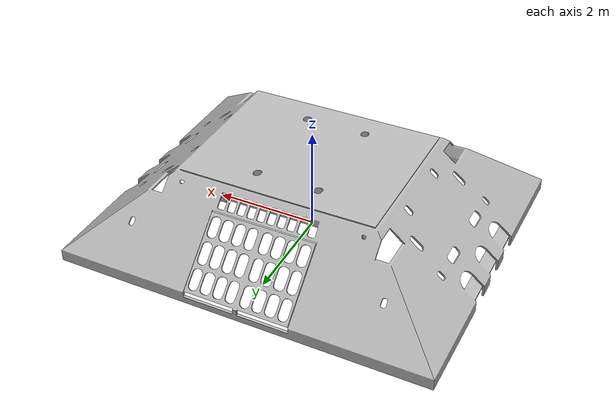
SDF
<?xml version="1.0"?>
<sdf version="1.6">
  <model name="mbari_mars">
    <static>false</static>
    <link name="base_link">
      <inertial>
        <mass>100</mass>
        <inertia>
          <ixx>5</ixx>
          <ixy>0.0</ixy>
          <ixz>0.0</ixz>
          <iyy>5</iyy>
          <iyz>0.0</iyz>
          <izz>5</izz>
        </inertia>
      </inertial>
      <visual name="visual">
        <geometry>
           <mesh>
            <uri>file://mbari_mars/meshes/mbari_mars.dae</uri>
          </mesh>
        </geometry>
      </visual>
      <collision name="collision">
        <pose>0 0 0 0 0 0</pose>
        <geometry>
          <mesh>
	    <uri>file://mbari_mars/meshes/mbari_mars_collision.dae</uri>
          </mesh>
        </geometry>
      </collision>
    </link>
  </model>
</sdf>
